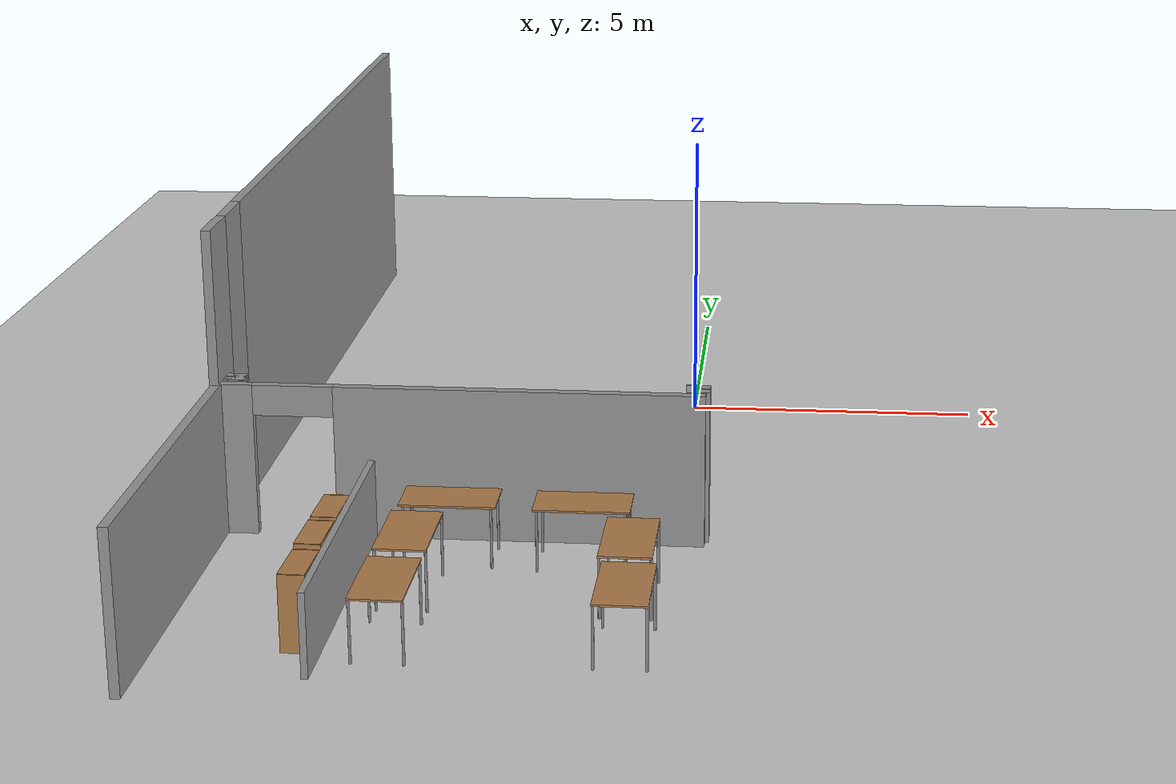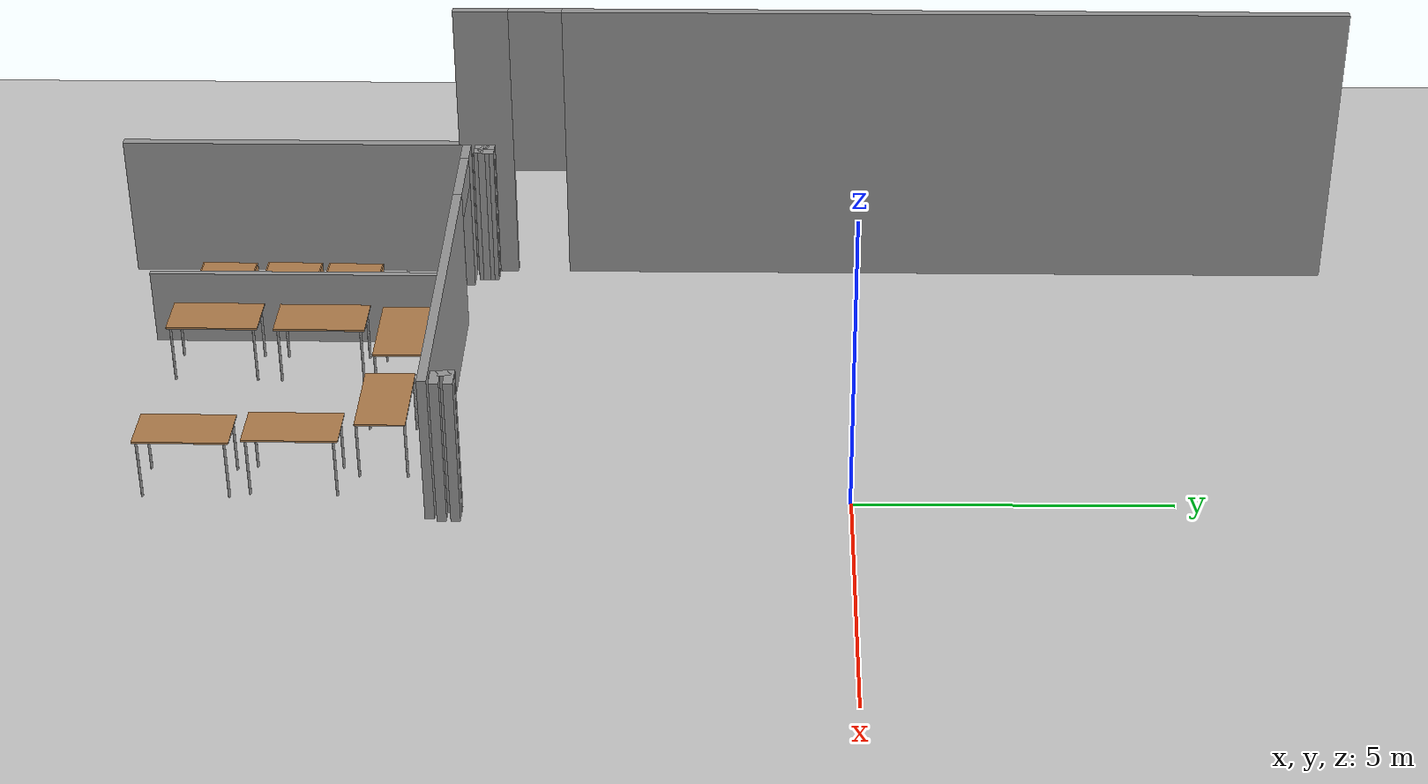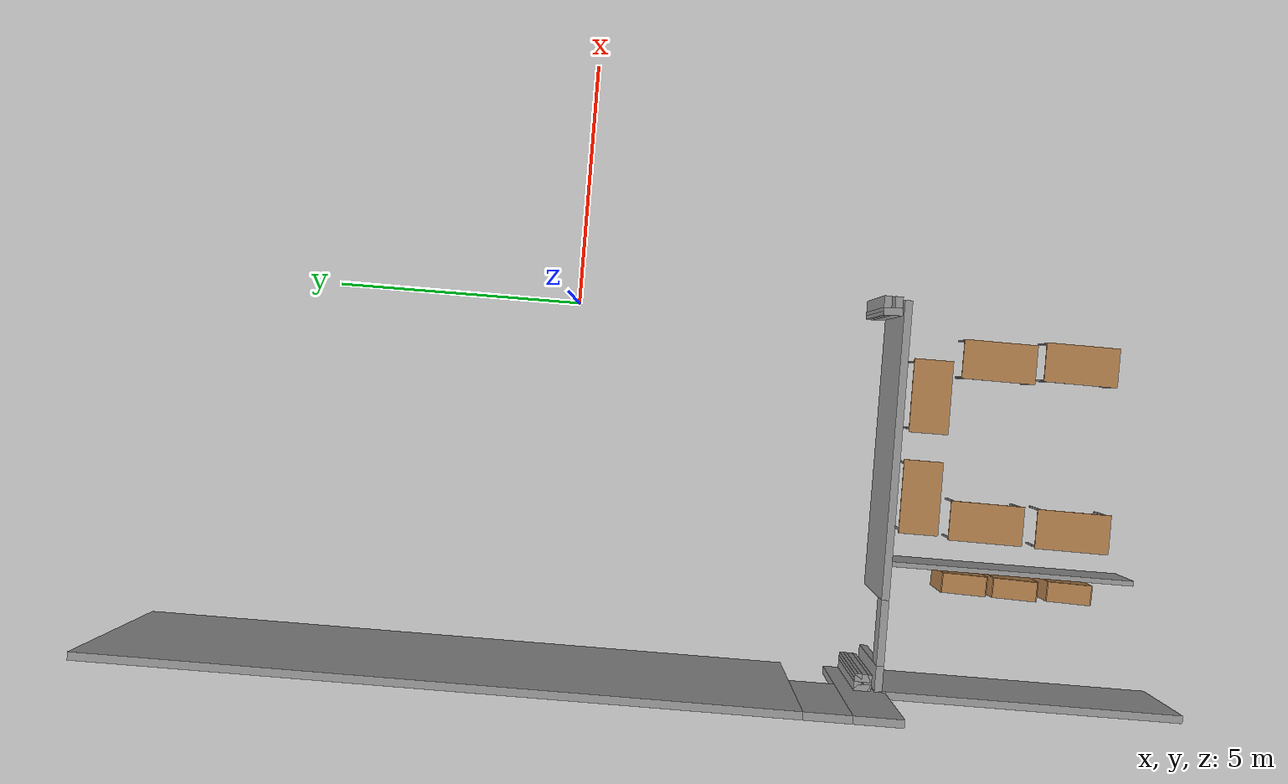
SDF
<sdf version="1.7">
 <world name="default">
  <model name="ground_plane">
   <static>1</static>
   <link name="link">
    <collision name="collision">
     <geometry><plane><normal>0 0 1</normal><size>100 100</size></plane></geometry>
     <surface>
      <contact><collide_bitmask>65535</collide_bitmask></contact>
      <friction><ode><mu>100</mu><mu2>50</mu2></ode></friction>
     </surface>
    </collision>
    <visual name="visual">
     <cast_shadows>0</cast_shadows>
     <geometry><plane><normal>0 0 1</normal><size>100 100</size></plane></geometry>
     <material>
      <script><uri>file://media/materials/scripts/gazebo.material</uri><name>Gazebo/Grey</name></script>
     </material>
    </visual>
   </link>
  </model>
  <model name="office_indoor_centered">
   <pose>8.45773 -9.64315 0 0 -0 0</pose>
   <link name="Wall_0">
    <pose>-15.6747 10.5251 0 0 -0 1.5708</pose>
    <visual name="Wall_0_Visual_0">
     <pose>-7.03494 0 2.5 0 -0 0</pose>
     <geometry><box><size>0.930116 0.15 5</size></box></geometry>
     <material>
      <script><uri>file://media/materials/scripts/gazebo.material</uri><name>Gazebo/Grey</name></script>
      <ambient>1 1 1 1</ambient>
     </material>
     <meta><layer>0</layer></meta>
    </visual>
    <collision name="Wall_0_Collision_0">
     <geometry><box><size>0.930116 0.15 5</size></box></geometry>
     <pose>-7.03494 0 2.5 0 -0 0</pose>
    </collision>
    <visual name="Wall_0_Visual_1">
     <pose>0.915058 0 2.5 0 -0 0</pose>
     <geometry><box><size>13.1699 0.15 5</size></box></geometry>
     <material>
      <script><uri>file://media/materials/scripts/gazebo.material</uri><name>Gazebo/Grey</name></script>
      <ambient>1 1 1 1</ambient>
     </material>
     <meta><layer>0</layer></meta>
    </visual>
    <collision name="Wall_0_Collision_1">
     <geometry><box><size>13.1699 0.15 5</size></box></geometry>
     <pose>0.915058 0 2.5 0 -0 0</pose>
    </collision>
    <visual name="Wall_0_Visual_2">
     <pose>-6.11988 0 3.5 0 -0 0</pose>
     <geometry><box><size>0.9 0.15 3</size></box></geometry>
     <material>
      <script><uri>file://media/materials/scripts/gazebo.material</uri><name>Gazebo/Grey</name></script>
      <ambient>1 1 1 1</ambient>
     </material>
     <meta><layer>0</layer></meta>
    </visual>
    <collision name="Wall_0_Collision_2">
     <geometry><box><size>0.9 0.15 3</size></box></geometry>
     <pose>-6.11988 0 3.5 0 -0 0</pose>
    </collision>
   </link>
   <link name="Wall_112">
    <collision name="Wall_112_Collision">
     <geometry><box><size>0.358506 0.15 2.5</size></box></geometry>
     <pose>0 0 1.25 0 -0 0</pose>
    </collision>
    <visual name="Wall_112_Visual">
     <pose>0 0 1.25 0 -0 0</pose>
     <geometry><box><size>0.358506 0.15 2.5</size></box></geometry>
     <material>
      <script><uri>file://media/materials/scripts/gazebo.material</uri><name>Gazebo/Grey</name></script>
      <ambient>1 1 1 1</ambient>
     </material>
     <meta><layer>0</layer></meta>
    </visual>
    <pose>-15.455 3.56311 0 0 -0 -0.010309</pose>
   </link>
   <link name="Wall_113">
    <collision name="Wall_113_Collision">
     <geometry><box><size>0.341348 0.15 2.5</size></box></geometry>
     <pose>0 0 1.25 0 -0 0</pose>
    </collision>
    <visual name="Wall_113_Visual">
     <pose>0 0 1.25 0 -0 0</pose>
     <geometry><box><size>0.341348 0.15 2.5</size></box></geometry>
     <material>
      <script><uri>file://media/materials/scripts/gazebo.material</uri><name>Gazebo/Grey</name></script>
      <ambient>1 1 1 1</ambient>
     </material>
     <meta><layer>0</layer></meta>
    </visual>
    <pose>-15.3539 3.46638 0 0 -0 -1.60449</pose>
   </link>
   <link name="Wall_114">
    <collision name="Wall_114_Collision">
     <geometry><box><size>0.337013 0.15 2.5</size></box></geometry>
     <pose>0 0 1.25 0 -0 0</pose>
    </collision>
    <visual name="Wall_114_Visual">
     <pose>0 0 1.25 0 -0 0</pose>
     <geometry><box><size>0.337013 0.15 2.5</size></box></geometry>
     <material>
      <script><uri>file://media/materials/scripts/gazebo.material</uri><name>Gazebo/Grey</name></script>
      <ambient>1 1 1 1</ambient>
     </material>
     <meta><layer>0</layer></meta>
    </visual>
    <pose>-15.4507 3.37181 0 0 -0 3.1301</pose>
   </link>
   <link name="Wall_115">
    <collision name="Wall_115_Collision">
     <geometry><box><size>0.326267 0.15 2.5</size></box></geometry>
     <pose>0 0 1.25 0 -0 0</pose>
    </collision>
    <visual name="Wall_115_Visual">
     <pose>0 0 1.25 0 -0 0</pose>
     <geometry><box><size>0.326267 0.15 2.5</size></box></geometry>
     <material>
      <script><uri>file://media/materials/scripts/gazebo.material</uri><name>Gazebo/Grey</name></script>
      <ambient>1 1 1 1</ambient>
     </material>
     <meta><layer>0</layer></meta>
    </visual>
    <pose>-15.5452 3.46101 0 0 -0 1.58299</pose>
   </link>
   <link name="Wall_117">
    <collision name="Wall_117_Collision">
     <geometry><box><size>0.384377 0.15 2.5</size></box></geometry>
     <pose>0 0 1.25 0 -0 0</pose>
    </collision>
    <visual name="Wall_117_Visual">
     <pose>0 0 1.25 0 -0 0</pose>
     <geometry><box><size>0.384377 0.15 2.5</size></box></geometry>
     <material>
      <script><uri>file://media/materials/scripts/gazebo.material</uri><name>Gazebo/Grey</name></script>
      <ambient>1 1 1 1</ambient>
     </material>
     <meta><layer>0</layer></meta>
    </visual>
    <pose>-8.21891 3.44274 0 0 -0 1.60748</pose>
   </link>
   <link name="Wall_118">
    <collision name="Wall_118_Collision">
     <geometry><box><size>0.378002 0.15 2.5</size></box></geometry>
     <pose>0 0 1.25 0 -0 0</pose>
    </collision>
    <visual name="Wall_118_Visual">
     <pose>0 0 1.25 0 -0 0</pose>
     <geometry><box><size>0.378002 0.15 2.5</size></box></geometry>
     <material>
      <script><uri>file://media/materials/scripts/gazebo.material</uri><name>Gazebo/Grey</name></script>
      <ambient>1 1 1 1</ambient>
     </material>
     <meta><layer>0</layer></meta>
    </visual>
    <pose>-8.10928 3.55881 0 0 -0 -0.009434</pose>
   </link>
   <link name="Wall_120">
    <collision name="Wall_120_Collision">
     <geometry><box><size>0.362837 0.15 2.5</size></box></geometry>
     <pose>0 0 1.25 0 -0 0</pose>
    </collision>
    <visual name="Wall_120_Visual">
     <pose>0 0 1.25 0 -0 0</pose>
     <geometry><box><size>0.362837 0.15 2.5</size></box></geometry>
     <material>
      <script><uri>file://media/materials/scripts/gazebo.material</uri><name>Gazebo/Grey</name></script>
      <ambient>1 1 1 1</ambient>
     </material>
     <meta><layer>0</layer></meta>
    </visual>
    <pose>-8.09961 3.34064 0 0 -0 -3.12139</pose>
   </link>
   <link name="Wall_132">
    <collision name="Wall_132_Collision">
     <geometry><box><size>5.2 0.1 1.3</size></box></geometry>
     <pose>0 0 0.65 0 -0 0</pose>
    </collision>
    <visual name="Wall_132_Visual">
     <pose>0 0 0.65 0 -0 0</pose>
     <geometry><box><size>5.2 0.1 1.3</size></box></geometry>
     <material>
      <script><uri>file://media/materials/scripts/gazebo.material</uri><name>Gazebo/Grey</name></script>
      <ambient>1 1 1 1</ambient>
     </material>
     <meta><layer>0</layer></meta>
    </visual>
    <pose>-13.2287 0.610146 0 0 -0 -1.5708</pose>
   </link>
   <link name="Wall_35">
    <collision name="Wall_35_Collision">
     <geometry><box><size>6 0.15 2.5</size></box></geometry>
     <pose>0 0 1.25 0 -0 0</pose>
    </collision>
    <visual name="Wall_35_Visual">
     <pose>0 0 1.25 0 -0 0</pose>
     <geometry><box><size>6 0.15 2.5</size></box></geometry>
     <material>
      <script><uri>file://media/materials/scripts/gazebo.material</uri><name>Gazebo/Grey</name></script>
      <ambient>1 1 1 1</ambient>
     </material>
     <meta><layer>0</layer></meta>
    </visual>
    <pose>-15.6534 0.230043 0 0 -0 1.5708</pose>
   </link>
   <link name="Wall_36">
    <pose>-11.8534 3.15504 0 0 -0 0</pose>
    <visual name="Wall_36_Visual_0">
     <pose>-3.55705 0 1.25 0 -0 0</pose>
     <geometry><box><size>0.635899 0.15 2.5</size></box></geometry>
     <material>
      <script><uri>file://media/materials/scripts/gazebo.material</uri><name>Gazebo/Grey</name></script>
      <ambient>1 1 1 1</ambient>
     </material>
     <meta><layer>0</layer></meta>
    </visual>
    <collision name="Wall_36_Collision_0">
     <geometry><box><size>0.635899 0.15 2.5</size></box></geometry>
     <pose>-3.55705 0 1.25 0 -0 0</pose>
    </collision>
    <visual name="Wall_36_Visual_1">
     <pose>0.956031 0 1.25 0 -0 0</pose>
     <geometry><box><size>5.83794 0.15 2.5</size></box></geometry>
     <material>
      <script><uri>file://media/materials/scripts/gazebo.material</uri><name>Gazebo/Grey</name></script>
      <ambient>1 1 1 1</ambient>
     </material>
     <meta><layer>0</layer></meta>
    </visual>
    <collision name="Wall_36_Collision_1">
     <geometry><box><size>5.83794 0.15 2.5</size></box></geometry>
     <pose>0.956031 0 1.25 0 -0 0</pose>
    </collision>
    <visual name="Wall_36_Visual_2">
     <pose>-2.60102 0 2.25 0 -0 0</pose>
     <geometry><box><size>1.27616 0.15 0.5</size></box></geometry>
     <material>
      <script><uri>file://media/materials/scripts/gazebo.material</uri><name>Gazebo/Grey</name></script>
      <ambient>1 1 1 1</ambient>
     </material>
     <meta><layer>0</layer></meta>
    </visual>
    <collision name="Wall_36_Collision_2">
     <geometry><box><size>1.27616 0.15 0.5</size></box></geometry>
     <pose>-2.60102 0 2.25 0 -0 0</pose>
    </collision>
   </link>
   <static>1</static>
  </model>
  <model name="table_16">
   <static>1</static>
   <link name="link">
    <collision name="surface">
     <pose>0 0 1 0 -0 0</pose>
     <geometry><box><size>1.5 0.8 0.03</size></box></geometry>
     <surface><friction><ode><mu>0.6</mu><mu2>0.6</mu2></ode></friction></surface>
    </collision>
    <visual name="visual1">
     <pose>0 0 1 0 -0 0</pose>
     <geometry><box><size>1.5 0.8 0.03</size></box></geometry>
     <material>
      <script><uri>file://media/materials/scripts/gazebo.material</uri><name>Gazebo/Wood</name></script>
     </material>
    </visual>
    <collision name="collision_front_left_leg">
     <pose>0.68 0.38 0.5 0 -0 0</pose>
     <geometry><cylinder><radius>0.02</radius><length>1</length></cylinder></geometry>
    </collision>
    <visual name="visual_front_left_leg">
     <pose>0.68 0.38 0.5 0 -0 0</pose>
     <geometry><cylinder><radius>0.02</radius><length>1</length></cylinder></geometry>
     <material>
      <script><uri>file://media/materials/scripts/gazebo.material</uri><name>Gazebo/Grey</name></script>
     </material>
    </visual>
    <collision name="collision_front_right_leg">
     <pose>0.68 -0.38 0.5 0 -0 0</pose>
     <geometry><cylinder><radius>0.02</radius><length>1</length></cylinder></geometry>
    </collision>
    <visual name="visual_front_right_leg">
     <pose>0.68 -0.38 0.5 0 -0 0</pose>
     <geometry><cylinder><radius>0.02</radius><length>1</length></cylinder></geometry>
     <material>
      <script><uri>file://media/materials/scripts/gazebo.material</uri><name>Gazebo/Grey</name></script>
     </material>
    </visual>
    <collision name="collision_back_right_leg">
     <pose>-0.68 -0.38 0.5 0 -0 0</pose>
     <geometry><cylinder><radius>0.02</radius><length>1</length></cylinder></geometry>
    </collision>
    <visual name="visual_back_right_leg">
     <pose>-0.68 -0.38 0.5 0 -0 0</pose>
     <geometry><cylinder><radius>0.02</radius><length>1</length></cylinder></geometry>
     <material>
      <script><uri>file://media/materials/scripts/gazebo.material</uri><name>Gazebo/Grey</name></script>
     </material>
    </visual>
    <collision name="collision_back_left_leg">
     <pose>-0.68 0.38 0.5 0 -0 0</pose>
     <geometry><cylinder><radius>0.02</radius><length>1</length></cylinder></geometry>
    </collision>
    <visual name="visual_back_left_leg">
     <pose>-0.68 0.38 0.5 0 -0 0</pose>
     <geometry><cylinder><radius>0.02</radius><length>1</length></cylinder></geometry>
     <material>
      <script><uri>file://media/materials/scripts/gazebo.material</uri><name>Gazebo/Grey</name></script>
     </material>
    </visual>
   </link>
   <pose>-3.41113 -7.2797 0 0 -0 0</pose>
  </model>
  <model name="table_17">
   <static>1</static>
   <link name="link">
    <collision name="surface">
     <pose>0 0 1 0 -0 0</pose>
     <geometry><box><size>1.5 0.8 0.03</size></box></geometry>
     <surface><friction><ode><mu>0.6</mu><mu2>0.6</mu2></ode></friction></surface>
    </collision>
    <visual name="visual1">
     <pose>0 0 1 0 -0 0</pose>
     <geometry><box><size>1.5 0.8 0.03</size></box></geometry>
     <material>
      <script><uri>file://media/materials/scripts/gazebo.material</uri><name>Gazebo/Wood</name></script>
     </material>
    </visual>
    <collision name="collision_front_left_leg">
     <pose>0.68 0.38 0.5 0 -0 0</pose>
     <geometry><cylinder><radius>0.02</radius><length>1</length></cylinder></geometry>
    </collision>
    <visual name="visual_front_left_leg">
     <pose>0.68 0.38 0.5 0 -0 0</pose>
     <geometry><cylinder><radius>0.02</radius><length>1</length></cylinder></geometry>
     <material>
      <script><uri>file://media/materials/scripts/gazebo.material</uri><name>Gazebo/Grey</name></script>
     </material>
    </visual>
    <collision name="collision_front_right_leg">
     <pose>0.68 -0.38 0.5 0 -0 0</pose>
     <geometry><cylinder><radius>0.02</radius><length>1</length></cylinder></geometry>
    </collision>
    <visual name="visual_front_right_leg">
     <pose>0.68 -0.38 0.5 0 -0 0</pose>
     <geometry><cylinder><radius>0.02</radius><length>1</length></cylinder></geometry>
     <material>
      <script><uri>file://media/materials/scripts/gazebo.material</uri><name>Gazebo/Grey</name></script>
     </material>
    </visual>
    <collision name="collision_back_right_leg">
     <pose>-0.68 -0.38 0.5 0 -0 0</pose>
     <geometry><cylinder><radius>0.02</radius><length>1</length></cylinder></geometry>
    </collision>
    <visual name="visual_back_right_leg">
     <pose>-0.68 -0.38 0.5 0 -0 0</pose>
     <geometry><cylinder><radius>0.02</radius><length>1</length></cylinder></geometry>
     <material>
      <script><uri>file://media/materials/scripts/gazebo.material</uri><name>Gazebo/Grey</name></script>
     </material>
    </visual>
    <collision name="collision_back_left_leg">
     <pose>-0.68 0.38 0.5 0 -0 0</pose>
     <geometry><cylinder><radius>0.02</radius><length>1</length></cylinder></geometry>
    </collision>
    <visual name="visual_back_left_leg">
     <pose>-0.68 0.38 0.5 0 -0 0</pose>
     <geometry><cylinder><radius>0.02</radius><length>1</length></cylinder></geometry>
     <material>
      <script><uri>file://media/materials/scripts/gazebo.material</uri><name>Gazebo/Grey</name></script>
     </material>
    </visual>
   </link>
   <pose>-1.34659 -7.32695 0 0 -0 0</pose>
  </model>
  <model name="table_26">
   <static>1</static>
   <link name="link">
    <collision name="surface">
     <pose>0 0 1 0 -0 0</pose>
     <geometry><box><size>1.5 0.8 0.03</size></box></geometry>
     <surface><friction><ode><mu>0.6</mu><mu2>0.6</mu2></ode></friction></surface>
    </collision>
    <visual name="visual1">
     <pose>0 0 1 0 -0 0</pose>
     <geometry><box><size>1.5 0.8 0.03</size></box></geometry>
     <material>
      <script><uri>file://media/materials/scripts/gazebo.material</uri><name>Gazebo/Wood</name></script>
     </material>
    </visual>
    <collision name="collision_front_left_leg">
     <pose>0.68 0.38 0.5 0 -0 0</pose>
     <geometry><cylinder><radius>0.02</radius><length>1</length></cylinder></geometry>
    </collision>
    <visual name="visual_front_left_leg">
     <pose>0.68 0.38 0.5 0 -0 0</pose>
     <geometry><cylinder><radius>0.02</radius><length>1</length></cylinder></geometry>
     <material>
      <script><uri>file://media/materials/scripts/gazebo.material</uri><name>Gazebo/Grey</name></script>
     </material>
    </visual>
    <collision name="collision_front_right_leg">
     <pose>0.68 -0.38 0.5 0 -0 0</pose>
     <geometry><cylinder><radius>0.02</radius><length>1</length></cylinder></geometry>
    </collision>
    <visual name="visual_front_right_leg">
     <pose>0.68 -0.38 0.5 0 -0 0</pose>
     <geometry><cylinder><radius>0.02</radius><length>1</length></cylinder></geometry>
     <material>
      <script><uri>file://media/materials/scripts/gazebo.material</uri><name>Gazebo/Grey</name></script>
     </material>
    </visual>
    <collision name="collision_back_right_leg">
     <pose>-0.68 -0.38 0.5 0 -0 0</pose>
     <geometry><cylinder><radius>0.02</radius><length>1</length></cylinder></geometry>
    </collision>
    <visual name="visual_back_right_leg">
     <pose>-0.68 -0.38 0.5 0 -0 0</pose>
     <geometry><cylinder><radius>0.02</radius><length>1</length></cylinder></geometry>
     <material>
      <script><uri>file://media/materials/scripts/gazebo.material</uri><name>Gazebo/Grey</name></script>
     </material>
    </visual>
    <collision name="collision_back_left_leg">
     <pose>-0.68 0.38 0.5 0 -0 0</pose>
     <geometry><cylinder><radius>0.02</radius><length>1</length></cylinder></geometry>
    </collision>
    <visual name="visual_back_left_leg">
     <pose>-0.68 0.38 0.5 0 -0 0</pose>
     <geometry><cylinder><radius>0.02</radius><length>1</length></cylinder></geometry>
     <material>
      <script><uri>file://media/materials/scripts/gazebo.material</uri><name>Gazebo/Grey</name></script>
     </material>
    </visual>
   </link>
   <pose>-0.530167 -8.66431 0 0 0 -1.57974</pose>
  </model>
  <model name="table_26_clone">
   <static>1</static>
   <link name="link">
    <collision name="surface">
     <pose>0 0 1 0 -0 0</pose>
     <geometry><box><size>1.5 0.8 0.03</size></box></geometry>
     <surface><friction><ode><mu>0.6</mu><mu2>0.6</mu2></ode></friction></surface>
    </collision>
    <visual name="visual1">
     <pose>0 0 1 0 -0 0</pose>
     <geometry><box><size>1.5 0.8 0.03</size></box></geometry>
     <material>
      <script><uri>file://media/materials/scripts/gazebo.material</uri><name>Gazebo/Wood</name></script>
     </material>
    </visual>
    <collision name="collision_front_left_leg">
     <pose>0.68 0.38 0.5 0 -0 0</pose>
     <geometry><cylinder><radius>0.02</radius><length>1</length></cylinder></geometry>
    </collision>
    <visual name="visual_front_left_leg">
     <pose>0.68 0.38 0.5 0 -0 0</pose>
     <geometry><cylinder><radius>0.02</radius><length>1</length></cylinder></geometry>
     <material>
      <script><uri>file://media/materials/scripts/gazebo.material</uri><name>Gazebo/Grey</name></script>
     </material>
    </visual>
    <collision name="collision_front_right_leg">
     <pose>0.68 -0.38 0.5 0 -0 0</pose>
     <geometry><cylinder><radius>0.02</radius><length>1</length></cylinder></geometry>
    </collision>
    <visual name="visual_front_right_leg">
     <pose>0.68 -0.38 0.5 0 -0 0</pose>
     <geometry><cylinder><radius>0.02</radius><length>1</length></cylinder></geometry>
     <material>
      <script><uri>file://media/materials/scripts/gazebo.material</uri><name>Gazebo/Grey</name></script>
     </material>
    </visual>
    <collision name="collision_back_right_leg">
     <pose>-0.68 -0.38 0.5 0 -0 0</pose>
     <geometry><cylinder><radius>0.02</radius><length>1</length></cylinder></geometry>
    </collision>
    <visual name="visual_back_right_leg">
     <pose>-0.68 -0.38 0.5 0 -0 0</pose>
     <geometry><cylinder><radius>0.02</radius><length>1</length></cylinder></geometry>
     <material>
      <script><uri>file://media/materials/scripts/gazebo.material</uri><name>Gazebo/Grey</name></script>
     </material>
    </visual>
    <collision name="collision_back_left_leg">
     <pose>-0.68 0.38 0.5 0 -0 0</pose>
     <geometry><cylinder><radius>0.02</radius><length>1</length></cylinder></geometry>
    </collision>
    <visual name="visual_back_left_leg">
     <pose>-0.68 0.38 0.5 0 -0 0</pose>
     <geometry><cylinder><radius>0.02</radius><length>1</length></cylinder></geometry>
     <material>
      <script><uri>file://media/materials/scripts/gazebo.material</uri><name>Gazebo/Grey</name></script>
     </material>
    </visual>
   </link>
   <pose>-0.4624 -10.3376 0 0 0 -1.57974</pose>
  </model>
  <model name="table_26_clone_0">
   <static>1</static>
   <link name="link">
    <collision name="surface">
     <pose>0 0 1 0 -0 0</pose>
     <geometry><box><size>1.5 0.8 0.03</size></box></geometry>
     <surface><friction><ode><mu>0.6</mu><mu2>0.6</mu2></ode></friction></surface>
    </collision>
    <visual name="visual1">
     <pose>0 0 1 0 -0 0</pose>
     <geometry><box><size>1.5 0.8 0.03</size></box></geometry>
     <material>
      <script><uri>file://media/materials/scripts/gazebo.material</uri><name>Gazebo/Wood</name></script>
     </material>
    </visual>
    <collision name="collision_front_left_leg">
     <pose>0.68 0.38 0.5 0 -0 0</pose>
     <geometry><cylinder><radius>0.02</radius><length>1</length></cylinder></geometry>
    </collision>
    <visual name="visual_front_left_leg">
     <pose>0.68 0.38 0.5 0 -0 0</pose>
     <geometry><cylinder><radius>0.02</radius><length>1</length></cylinder></geometry>
     <material>
      <script><uri>file://media/materials/scripts/gazebo.material</uri><name>Gazebo/Grey</name></script>
     </material>
    </visual>
    <collision name="collision_front_right_leg">
     <pose>0.68 -0.38 0.5 0 -0 0</pose>
     <geometry><cylinder><radius>0.02</radius><length>1</length></cylinder></geometry>
    </collision>
    <visual name="visual_front_right_leg">
     <pose>0.68 -0.38 0.5 0 -0 0</pose>
     <geometry><cylinder><radius>0.02</radius><length>1</length></cylinder></geometry>
     <material>
      <script><uri>file://media/materials/scripts/gazebo.material</uri><name>Gazebo/Grey</name></script>
     </material>
    </visual>
    <collision name="collision_back_right_leg">
     <pose>-0.68 -0.38 0.5 0 -0 0</pose>
     <geometry><cylinder><radius>0.02</radius><length>1</length></cylinder></geometry>
    </collision>
    <visual name="visual_back_right_leg">
     <pose>-0.68 -0.38 0.5 0 -0 0</pose>
     <geometry><cylinder><radius>0.02</radius><length>1</length></cylinder></geometry>
     <material>
      <script><uri>file://media/materials/scripts/gazebo.material</uri><name>Gazebo/Grey</name></script>
     </material>
    </visual>
    <collision name="collision_back_left_leg">
     <pose>-0.68 0.38 0.5 0 -0 0</pose>
     <geometry><cylinder><radius>0.02</radius><length>1</length></cylinder></geometry>
    </collision>
    <visual name="visual_back_left_leg">
     <pose>-0.68 0.38 0.5 0 -0 0</pose>
     <geometry><cylinder><radius>0.02</radius><length>1</length></cylinder></geometry>
     <material>
      <script><uri>file://media/materials/scripts/gazebo.material</uri><name>Gazebo/Grey</name></script>
     </material>
    </visual>
   </link>
   <pose>-3.82855 -8.64751 0 0 0 -1.57974</pose>
  </model>
  <model name="table_26_clone_1">
   <static>1</static>
   <link name="link">
    <collision name="surface">
     <pose>0 0 1 0 -0 0</pose>
     <geometry><box><size>1.5 0.8 0.03</size></box></geometry>
     <surface><friction><ode><mu>0.6</mu><mu2>0.6</mu2></ode></friction></surface>
    </collision>
    <visual name="visual1">
     <pose>0 0 1 0 -0 0</pose>
     <geometry><box><size>1.5 0.8 0.03</size></box></geometry>
     <material>
      <script><uri>file://media/materials/scripts/gazebo.material</uri><name>Gazebo/Wood</name></script>
     </material>
    </visual>
    <collision name="collision_front_left_leg">
     <pose>0.68 0.38 0.5 0 -0 0</pose>
     <geometry><cylinder><radius>0.02</radius><length>1</length></cylinder></geometry>
    </collision>
    <visual name="visual_front_left_leg">
     <pose>0.68 0.38 0.5 0 -0 0</pose>
     <geometry><cylinder><radius>0.02</radius><length>1</length></cylinder></geometry>
     <material>
      <script><uri>file://media/materials/scripts/gazebo.material</uri><name>Gazebo/Grey</name></script>
     </material>
    </visual>
    <collision name="collision_front_right_leg">
     <pose>0.68 -0.38 0.5 0 -0 0</pose>
     <geometry><cylinder><radius>0.02</radius><length>1</length></cylinder></geometry>
    </collision>
    <visual name="visual_front_right_leg">
     <pose>0.68 -0.38 0.5 0 -0 0</pose>
     <geometry><cylinder><radius>0.02</radius><length>1</length></cylinder></geometry>
     <material>
      <script><uri>file://media/materials/scripts/gazebo.material</uri><name>Gazebo/Grey</name></script>
     </material>
    </visual>
    <collision name="collision_back_right_leg">
     <pose>-0.68 -0.38 0.5 0 -0 0</pose>
     <geometry><cylinder><radius>0.02</radius><length>1</length></cylinder></geometry>
    </collision>
    <visual name="visual_back_right_leg">
     <pose>-0.68 -0.38 0.5 0 -0 0</pose>
     <geometry><cylinder><radius>0.02</radius><length>1</length></cylinder></geometry>
     <material>
      <script><uri>file://media/materials/scripts/gazebo.material</uri><name>Gazebo/Grey</name></script>
     </material>
    </visual>
    <collision name="collision_back_left_leg">
     <pose>-0.68 0.38 0.5 0 -0 0</pose>
     <geometry><cylinder><radius>0.02</radius><length>1</length></cylinder></geometry>
    </collision>
    <visual name="visual_back_left_leg">
     <pose>-0.68 0.38 0.5 0 -0 0</pose>
     <geometry><cylinder><radius>0.02</radius><length>1</length></cylinder></geometry>
     <material>
      <script><uri>file://media/materials/scripts/gazebo.material</uri><name>Gazebo/Grey</name></script>
     </material>
    </visual>
   </link>
   <pose>-3.85752 -10.4144 0 0 0 -1.57974</pose>
  </model>
  <model name="bookshelf_2_clone">
   <static>1</static>
   <link name="link">
    <inertial><mass>1</mass></inertial>
    <collision name="collision_back">
     <pose>0 0.005 0.6 0 -0 0</pose>
     <geometry><box><size>0.9 0.01 1.2</size></box></geometry>
    </collision>
    <visual name="visual1">
     <pose>0 0.005 0.6 0 -0 0</pose>
     <geometry><box><size>0.9 0.01 1.2</size></box></geometry>
     <material>
      <script><uri>file://media/materials/scripts/gazebo.material</uri><name>Gazebo/Wood</name></script>
     </material>
    </visual>
    <collision name="left_side">
     <pose>0.45 -0.195 0.6 0 -0 0</pose>
     <geometry><box><size>0.02 0.4 1.2</size></box></geometry>
    </collision>
    <visual name="visual2">
     <pose>0.45 -0.195 0.6 0 -0 0</pose>
     <geometry><box><size>0.02 0.4 1.2</size></box></geometry>
     <material>
      <script><uri>file://media/materials/scripts/gazebo.material</uri><name>Gazebo/Wood</name></script>
     </material>
    </visual>
    <collision name="right_side">
     <pose>-0.45 -0.195 0.6 0 -0 0</pose>
     <geometry><box><size>0.02 0.4 1.2</size></box></geometry>
    </collision>
    <visual name="visual3">
     <pose>-0.45 -0.195 0.6 0 -0 0</pose>
     <geometry><box><size>0.02 0.4 1.2</size></box></geometry>
     <material>
      <script><uri>file://media/materials/scripts/gazebo.material</uri><name>Gazebo/Wood</name></script>
     </material>
    </visual>
    <collision name="bottom">
     <pose>0 -0.195 0.03 0 -0 0</pose>
     <geometry><box><size>0.88 0.4 0.06</size></box></geometry>
    </collision>
    <visual name="visual4">
     <pose>0 -0.195 0.03 0 -0 0</pose>
     <geometry><box><size>0.88 0.4 0.06</size></box></geometry>
     <material>
      <script><uri>file://media/materials/scripts/gazebo.material</uri><name>Gazebo/Wood</name></script>
     </material>
    </visual>
    <collision name="top">
     <pose>0 -0.195 1.19 0 -0 0</pose>
     <geometry><box><size>0.88 0.4 0.02</size></box></geometry>
    </collision>
    <visual name="visual5">
     <pose>0 -0.195 1.19 0 -0 0</pose>
     <geometry><box><size>0.88 0.4 0.02</size></box></geometry>
     <material>
      <script><uri>file://media/materials/scripts/gazebo.material</uri><name>Gazebo/Wood</name></script>
     </material>
    </visual>
    <collision name="low_shelf">
     <pose>0 -0.195 0.43 0 -0 0</pose>
     <geometry><box><size>0.88 0.4 0.02</size></box></geometry>
    </collision>
    <visual name="visual6">
     <pose>0 -0.195 0.43 0 -0 0</pose>
     <geometry><box><size>0.88 0.4 0.02</size></box></geometry>
     <material>
      <script><uri>file://media/materials/scripts/gazebo.material</uri><name>Gazebo/Wood</name></script>
     </material>
    </visual>
    <collision name="high_shelf">
     <pose>0 -0.195 0.8 0 -0 0</pose>
     <geometry><box><size>0.88 0.4 0.02</size></box></geometry>
    </collision>
    <visual name="visual7">
     <pose>0 -0.195 0.8 0 -0 0</pose>
     <geometry><box><size>0.88 0.4 0.02</size></box></geometry>
     <material>
      <script><uri>file://media/materials/scripts/gazebo.material</uri><name>Gazebo/Wood</name></script>
     </material>
    </visual>
   </link>
   <pose>-4.88311 -8.25828 0 0 0 -1.5972</pose>
  </model>
  <model name="bookshelf_2_clone_0">
   <static>1</static>
   <link name="link">
    <inertial><mass>1</mass></inertial>
    <collision name="collision_back">
     <pose>0 0.005 0.6 0 -0 0</pose>
     <geometry><box><size>0.9 0.01 1.2</size></box></geometry>
    </collision>
    <visual name="visual1">
     <pose>0 0.005 0.6 0 -0 0</pose>
     <geometry><box><size>0.9 0.01 1.2</size></box></geometry>
     <material>
      <script><uri>file://media/materials/scripts/gazebo.material</uri><name>Gazebo/Wood</name></script>
     </material>
    </visual>
    <collision name="left_side">
     <pose>0.45 -0.195 0.6 0 -0 0</pose>
     <geometry><box><size>0.02 0.4 1.2</size></box></geometry>
    </collision>
    <visual name="visual2">
     <pose>0.45 -0.195 0.6 0 -0 0</pose>
     <geometry><box><size>0.02 0.4 1.2</size></box></geometry>
     <material>
      <script><uri>file://media/materials/scripts/gazebo.material</uri><name>Gazebo/Wood</name></script>
     </material>
    </visual>
    <collision name="right_side">
     <pose>-0.45 -0.195 0.6 0 -0 0</pose>
     <geometry><box><size>0.02 0.4 1.2</size></box></geometry>
    </collision>
    <visual name="visual3">
     <pose>-0.45 -0.195 0.6 0 -0 0</pose>
     <geometry><box><size>0.02 0.4 1.2</size></box></geometry>
     <material>
      <script><uri>file://media/materials/scripts/gazebo.material</uri><name>Gazebo/Wood</name></script>
     </material>
    </visual>
    <collision name="bottom">
     <pose>0 -0.195 0.03 0 -0 0</pose>
     <geometry><box><size>0.88 0.4 0.06</size></box></geometry>
    </collision>
    <visual name="visual4">
     <pose>0 -0.195 0.03 0 -0 0</pose>
     <geometry><box><size>0.88 0.4 0.06</size></box></geometry>
     <material>
      <script><uri>file://media/materials/scripts/gazebo.material</uri><name>Gazebo/Wood</name></script>
     </material>
    </visual>
    <collision name="top">
     <pose>0 -0.195 1.19 0 -0 0</pose>
     <geometry><box><size>0.88 0.4 0.02</size></box></geometry>
    </collision>
    <visual name="visual5">
     <pose>0 -0.195 1.19 0 -0 0</pose>
     <geometry><box><size>0.88 0.4 0.02</size></box></geometry>
     <material>
      <script><uri>file://media/materials/scripts/gazebo.material</uri><name>Gazebo/Wood</name></script>
     </material>
    </visual>
    <collision name="low_shelf">
     <pose>0 -0.195 0.43 0 -0 0</pose>
     <geometry><box><size>0.88 0.4 0.02</size></box></geometry>
    </collision>
    <visual name="visual6">
     <pose>0 -0.195 0.43 0 -0 0</pose>
     <geometry><box><size>0.88 0.4 0.02</size></box></geometry>
     <material>
      <script><uri>file://media/materials/scripts/gazebo.material</uri><name>Gazebo/Wood</name></script>
     </material>
    </visual>
    <collision name="high_shelf">
     <pose>0 -0.195 0.8 0 -0 0</pose>
     <geometry><box><size>0.88 0.4 0.02</size></box></geometry>
    </collision>
    <visual name="visual7">
     <pose>0 -0.195 0.8 0 -0 0</pose>
     <geometry><box><size>0.88 0.4 0.02</size></box></geometry>
     <material>
      <script><uri>file://media/materials/scripts/gazebo.material</uri><name>Gazebo/Wood</name></script>
     </material>
    </visual>
   </link>
   <pose>-4.90439 -9.28531 0 0 0 -1.5972</pose>
  </model>
  <model name="bookshelf_2_clone_1">
   <static>1</static>
   <link name="link">
    <inertial><mass>1</mass></inertial>
    <collision name="collision_back">
     <pose>0 0.005 0.6 0 -0 0</pose>
     <geometry><box><size>0.9 0.01 1.2</size></box></geometry>
    </collision>
    <visual name="visual1">
     <pose>0 0.005 0.6 0 -0 0</pose>
     <geometry><box><size>0.9 0.01 1.2</size></box></geometry>
     <material>
      <script><uri>file://media/materials/scripts/gazebo.material</uri><name>Gazebo/Wood</name></script>
     </material>
    </visual>
    <collision name="left_side">
     <pose>0.45 -0.195 0.6 0 -0 0</pose>
     <geometry><box><size>0.02 0.4 1.2</size></box></geometry>
    </collision>
    <visual name="visual2">
     <pose>0.45 -0.195 0.6 0 -0 0</pose>
     <geometry><box><size>0.02 0.4 1.2</size></box></geometry>
     <material>
      <script><uri>file://media/materials/scripts/gazebo.material</uri><name>Gazebo/Wood</name></script>
     </material>
    </visual>
    <collision name="right_side">
     <pose>-0.45 -0.195 0.6 0 -0 0</pose>
     <geometry><box><size>0.02 0.4 1.2</size></box></geometry>
    </collision>
    <visual name="visual3">
     <pose>-0.45 -0.195 0.6 0 -0 0</pose>
     <geometry><box><size>0.02 0.4 1.2</size></box></geometry>
     <material>
      <script><uri>file://media/materials/scripts/gazebo.material</uri><name>Gazebo/Wood</name></script>
     </material>
    </visual>
    <collision name="bottom">
     <pose>0 -0.195 0.03 0 -0 0</pose>
     <geometry><box><size>0.88 0.4 0.06</size></box></geometry>
    </collision>
    <visual name="visual4">
     <pose>0 -0.195 0.03 0 -0 0</pose>
     <geometry><box><size>0.88 0.4 0.06</size></box></geometry>
     <material>
      <script><uri>file://media/materials/scripts/gazebo.material</uri><name>Gazebo/Wood</name></script>
     </material>
    </visual>
    <collision name="top">
     <pose>0 -0.195 1.19 0 -0 0</pose>
     <geometry><box><size>0.88 0.4 0.02</size></box></geometry>
    </collision>
    <visual name="visual5">
     <pose>0 -0.195 1.19 0 -0 0</pose>
     <geometry><box><size>0.88 0.4 0.02</size></box></geometry>
     <material>
      <script><uri>file://media/materials/scripts/gazebo.material</uri><name>Gazebo/Wood</name></script>
     </material>
    </visual>
    <collision name="low_shelf">
     <pose>0 -0.195 0.43 0 -0 0</pose>
     <geometry><box><size>0.88 0.4 0.02</size></box></geometry>
    </collision>
    <visual name="visual6">
     <pose>0 -0.195 0.43 0 -0 0</pose>
     <geometry><box><size>0.88 0.4 0.02</size></box></geometry>
     <material>
      <script><uri>file://media/materials/scripts/gazebo.material</uri><name>Gazebo/Wood</name></script>
     </material>
    </visual>
    <collision name="high_shelf">
     <pose>0 -0.195 0.8 0 -0 0</pose>
     <geometry><box><size>0.88 0.4 0.02</size></box></geometry>
    </collision>
    <visual name="visual7">
     <pose>0 -0.195 0.8 0 -0 0</pose>
     <geometry><box><size>0.88 0.4 0.02</size></box></geometry>
     <material>
      <script><uri>file://media/materials/scripts/gazebo.material</uri><name>Gazebo/Wood</name></script>
     </material>
    </visual>
   </link>
   <pose>-4.89189 -10.3828 0 0 0 -1.5972</pose>
  </model>
 </world>
</sdf>
